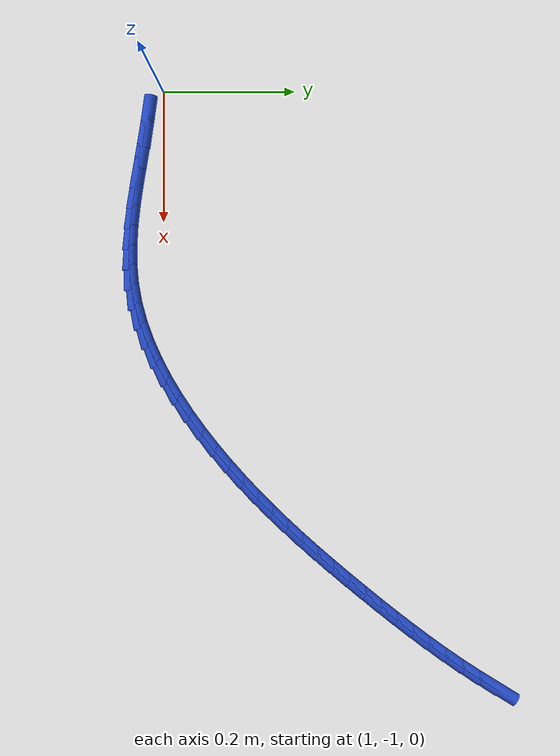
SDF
<sdf version="1.6">
 <world name="default">
  <model name="ground_plane">
   <static>1</static>
   <link name="link">
    <collision name="collision">
     <geometry><plane><normal>0 0 1</normal><size>100 100</size></plane></geometry>
     <surface><friction><ode><mu>100</mu><mu2>50</mu2></ode></friction></surface>
    </collision>
    <visual name="visual">
     <cast_shadows>0</cast_shadows>
     <geometry><plane><normal>0 0 1</normal><size>100 100</size></plane></geometry>
     <material>
      <script><uri>file://media/materials/scripts/gazebo.material</uri><name>Gazebo/WhiteGlow</name></script>
     </material>
    </visual>
   </link>
  </model>
  <model name="line">
   <link name="link_123">
    <pose>1.9088743113380238 -0.4959171571857584 0.01 0 1.57 1.0184952734578194</pose>
    <collision name="collision">
     <geometry><cylinder><radius>0.01</radius><length>0.08</length></cylinder></geometry>
    </collision>
    <visual name="visual">
     <material>
      <script><name>Gazebo/Blue</name><uri>file://media/materials/scripts/gazebo.material</uri></script>
     </material>
     <geometry><cylinder><radius>0.01</radius><length>0.08</length></cylinder></geometry>
    </visual>
   </link>
   <link name="link_124">
    <pose>1.8925202807554393 -0.5224540308787561 0.01 0 1.57 0.9924584813441164</pose>
    <collision name="collision">
     <geometry><cylinder><radius>0.01</radius><length>0.08</length></cylinder></geometry>
    </collision>
    <visual name="visual">
     <material>
      <script><name>Gazebo/Blue</name><uri>file://media/materials/scripts/gazebo.material</uri></script>
     </material>
     <geometry><cylinder><radius>0.01</radius><length>0.08</length></cylinder></geometry>
    </visual>
   </link>
   <link name="link_125">
    <pose>1.875476007257121 -0.548563702309075 0.01 0 1.57 0.9689911327801847</pose>
    <collision name="collision">
     <geometry><cylinder><radius>0.01</radius><length>0.08</length></cylinder></geometry>
    </collision>
    <visual name="visual">
     <material>
      <script><name>Gazebo/Blue</name><uri>file://media/materials/scripts/gazebo.material</uri></script>
     </material>
     <geometry><cylinder><radius>0.01</radius><length>0.08</length></cylinder></geometry>
    </visual>
   </link>
   <link name="link_126">
    <pose>1.8578173717573845 -0.5742755364816404 0.01 0 1.57 0.948076527673184</pose>
    <collision name="collision">
     <geometry><cylinder><radius>0.01</radius><length>0.08</length></cylinder></geometry>
    </collision>
    <visual name="visual">
     <material>
      <script><name>Gazebo/Blue</name><uri>file://media/materials/scripts/gazebo.material</uri></script>
     </material>
     <geometry><cylinder><radius>0.01</radius><length>0.08</length></cylinder></geometry>
    </visual>
   </link>
   <link name="link_127">
    <pose>1.839620255170547 -0.59961889840138 0.01 0 1.57 0.9296920477667652</pose>
    <collision name="collision">
     <geometry><cylinder><radius>0.01</radius><length>0.08</length></cylinder></geometry>
    </collision>
    <visual name="visual">
     <material>
      <script><name>Gazebo/Blue</name><uri>file://media/materials/scripts/gazebo.material</uri></script>
     </material>
     <geometry><cylinder><radius>0.01</radius><length>0.08</length></cylinder></geometry>
    </visual>
   </link>
   <link name="link_128">
    <pose>1.8209605384109209 -0.6246231530732199 0.01 0 1.57 0.9138132077534743</pose>
    <collision name="collision">
     <geometry><cylinder><radius>0.01</radius><length>0.08</length></cylinder></geometry>
    </collision>
    <visual name="visual">
     <material>
      <script><name>Gazebo/Blue</name><uri>file://media/materials/scripts/gazebo.material</uri></script>
     </material>
     <geometry><cylinder><radius>0.01</radius><length>0.08</length></cylinder></geometry>
    </visual>
   </link>
   <link name="link_129">
    <pose>1.8019141023928245 -0.6493176655020874 0.01 0 1.57 0.9004171109981163</pose>
    <collision name="collision">
     <geometry><cylinder><radius>0.01</radius><length>0.08</length></cylinder></geometry>
    </collision>
    <visual name="visual">
     <material>
      <script><name>Gazebo/Blue</name><uri>file://media/materials/scripts/gazebo.material</uri></script>
     </material>
     <geometry><cylinder><radius>0.01</radius><length>0.08</length></cylinder></geometry>
    </visual>
   </link>
   <link name="link_130">
    <pose>1.782556828030571 -0.6737318006929083 0.01 0 1.57 0.889485355154983</pose>
    <collision name="collision">
     <geometry><cylinder><radius>0.01</radius><length>0.08</length></cylinder></geometry>
    </collision>
    <visual name="visual">
     <material>
      <script><name>Gazebo/Blue</name><uri>file://media/materials/scripts/gazebo.material</uri></script>
     </material>
     <geometry><cylinder><radius>0.01</radius><length>0.08</length></cylinder></geometry>
    </visual>
   </link>
   <link name="link_131">
    <pose>1.762964596238478 -0.6978949236506099 0.01 0 1.57 0.8806797030926925</pose>
    <collision name="collision">
     <geometry><cylinder><radius>0.01</radius><length>0.08</length></cylinder></geometry>
    </collision>
    <visual name="visual">
     <material>
      <script><name>Gazebo/Blue</name><uri>file://media/materials/scripts/gazebo.material</uri></script>
     </material>
     <geometry><cylinder><radius>0.01</radius><length>0.08</length></cylinder></geometry>
    </visual>
   </link>
   <link name="link_132">
    <pose>1.7432035143446603 -0.7218323087024995 0.01 0 1.57 0.8708623518514527</pose>
    <collision name="collision">
     <geometry><cylinder><radius>0.01</radius><length>0.08</length></cylinder></geometry>
    </collision>
    <visual name="visual">
     <material>
      <script><name>Gazebo/Blue</name><uri>file://media/materials/scripts/gazebo.material</uri></script>
     </material>
     <geometry><cylinder><radius>0.01</radius><length>0.08</length></cylinder></geometry>
    </visual>
   </link>
   <link name="link_133">
    <pose>1.723245914682838 -0.7455299811977613 0.01 0 1.57 0.8582961021293536</pose>
    <collision name="collision">
     <geometry><cylinder><radius>0.01</radius><length>0.08</length></cylinder></geometry>
    </collision>
    <visual name="visual">
     <material>
      <script><name>Gazebo/Blue</name><uri>file://media/materials/scripts/gazebo.material</uri></script>
     </material>
     <geometry><cylinder><radius>0.01</radius><length>0.08</length></cylinder></geometry>
    </visual>
   </link>
   <link name="link_134">
    <pose>1.703011887450067 -0.7689521008433378 0.01 0 1.57 0.8429883826686356</pose>
    <collision name="collision">
     <geometry><cylinder><radius>0.01</radius><length>0.08</length></cylinder></geometry>
    </collision>
    <visual name="visual">
     <material>
      <script><name>Gazebo/Blue</name><uri>file://media/materials/scripts/gazebo.material</uri></script>
     </material>
     <geometry><cylinder><radius>0.01</radius><length>0.08</length></cylinder></geometry>
    </visual>
   </link>
   <link name="link_135">
    <pose>1.6824209578589124 -0.7920625908752009 0.01 0 1.57 0.8249854571355435</pose>
    <collision name="collision">
     <geometry><cylinder><radius>0.01</radius><length>0.08</length></cylinder></geometry>
    </collision>
    <visual name="visual">
     <material>
      <script><name>Gazebo/Blue</name><uri>file://media/materials/scripts/gazebo.material</uri></script>
     </material>
     <geometry><cylinder><radius>0.01</radius><length>0.08</length></cylinder></geometry>
    </visual>
   </link>
   <link name="link_136">
    <pose>1.6613926511219377 -0.8148253745293217 0.01 0 1.57 0.804356365872783</pose>
    <collision name="collision">
     <geometry><cylinder><radius>0.01</radius><length>0.08</length></cylinder></geometry>
    </collision>
    <visual name="visual">
     <material>
      <script><name>Gazebo/Blue</name><uri>file://media/materials/scripts/gazebo.material</uri></script>
     </material>
     <geometry><cylinder><radius>0.01</radius><length>0.08</length></cylinder></geometry>
    </visual>
   </link>
   <link name="link_137">
    <pose>1.6398464924517078 -0.8372043750416712 0.01 0 1.57 0.7811957040967942</pose>
    <collision name="collision">
     <geometry><cylinder><radius>0.01</radius><length>0.08</length></cylinder></geometry>
    </collision>
    <visual name="visual">
     <material>
      <script><name>Gazebo/Blue</name><uri>file://media/materials/scripts/gazebo.material</uri></script>
     </material>
     <geometry><cylinder><radius>0.01</radius><length>0.08</length></cylinder></geometry>
    </visual>
   </link>
   <link name="link_138">
    <pose>1.6177020070607862 -0.8591635156482219 0.01 0 1.57 0.7556260590987286</pose>
    <collision name="collision">
     <geometry><cylinder><radius>0.01</radius><length>0.08</length></cylinder></geometry>
    </collision>
    <visual name="visual">
     <material>
      <script><name>Gazebo/Blue</name><uri>file://media/materials/scripts/gazebo.material</uri></script>
     </material>
     <geometry><cylinder><radius>0.01</radius><length>0.08</length></cylinder></geometry>
    </visual>
   </link>
   <link name="link_139">
    <pose>1.5948787201617387 -0.8806667195849435 0.01 0 1.57 0.727799771784634</pose>
    <collision name="collision">
     <geometry><cylinder><radius>0.01</radius><length>0.08</length></cylinder></geometry>
    </collision>
    <visual name="visual">
     <material>
      <script><name>Gazebo/Blue</name><uri>file://media/materials/scripts/gazebo.material</uri></script>
     </material>
     <geometry><cylinder><radius>0.01</radius><length>0.08</length></cylinder></geometry>
    </visual>
   </link>
   <link name="link_140">
    <pose>1.5712961569671289 -0.901677910087808 0.01 0 1.57 0.6978840935130697</pose>
    <collision name="collision">
     <geometry><cylinder><radius>0.01</radius><length>0.08</length></cylinder></geometry>
    </collision>
    <visual name="visual">
     <material>
      <script><name>Gazebo/Blue</name><uri>file://media/materials/scripts/gazebo.material</uri></script>
     </material>
     <geometry><cylinder><radius>0.01</radius><length>0.08</length></cylinder></geometry>
    </visual>
   </link>
   <link name="link_141">
    <pose>1.5468748249406294 -0.9221595384739831 0.01 0 1.57 0.6651091586991548</pose>
    <collision name="collision">
     <geometry><cylinder><radius>0.01</radius><length>0.08</length></cylinder></geometry>
    </collision>
    <visual name="visual">
     <material>
      <script><name>Gazebo/Blue</name><uri>file://media/materials/scripts/gazebo.material</uri></script>
     </material>
     <geometry><cylinder><radius>0.01</radius><length>0.08</length></cylinder></geometry>
    </visual>
   </link>
   <link name="link_142">
    <pose>1.5215913254515891 -0.9419899984568193 0.01 0 1.57 0.6277878244447692</pose>
    <collision name="collision">
     <geometry><cylinder><radius>0.01</radius><length>0.08</length></cylinder></geometry>
    </collision>
    <visual name="visual">
     <material>
      <script><name>Gazebo/Blue</name><uri>file://media/materials/scripts/gazebo.material</uri></script>
     </material>
     <geometry><cylinder><radius>0.01</radius><length>0.08</length></cylinder></geometry>
    </visual>
   </link>
   <link name="link_143">
    <pose>1.4955076099523625 -0.9609197853019378 0.01 0 1.57 0.5852177204576156</pose>
    <collision name="collision">
     <geometry><cylinder><radius>0.01</radius><length>0.08</length></cylinder></geometry>
    </collision>
    <visual name="visual">
     <material>
      <script><name>Gazebo/Blue</name><uri>file://media/materials/scripts/gazebo.material</uri></script>
     </material>
     <geometry><cylinder><radius>0.01</radius><length>0.08</length></cylinder></geometry>
    </visual>
   </link>
   <link name="link_144">
    <pose>1.4686927884790753 -0.9786886670240875 0.01 0 1.57 0.5367090677745961</pose>
    <collision name="collision">
     <geometry><cylinder><radius>0.01</radius><length>0.08</length></cylinder></geometry>
    </collision>
    <visual name="visual">
     <material>
      <script><name>Gazebo/Blue</name><uri>file://media/materials/scripts/gazebo.material</uri></script>
     </material>
     <geometry><cylinder><radius>0.01</radius><length>0.08</length></cylinder></geometry>
    </visual>
   </link>
   <link name="link_145">
    <pose>1.4412159710678516 -0.9950364116380179 0.01 0 1.57 0.4814839176654953</pose>
    <collision name="collision">
     <geometry><cylinder><radius>0.01</radius><length>0.08</length></cylinder></geometry>
    </collision>
    <visual name="visual">
     <material>
      <script><name>Gazebo/Blue</name><uri>file://media/materials/scripts/gazebo.material</uri></script>
     </material>
     <geometry><cylinder><radius>0.01</radius><length>0.08</length></cylinder></geometry>
    </visual>
   </link>
   <link name="link_146">
    <pose>1.4131462677548192 -1.0097027871584776 0.01 0 1.57 0.4187078912543283</pose>
    <collision name="collision">
     <geometry><cylinder><radius>0.01</radius><length>0.08</length></cylinder></geometry>
    </collision>
    <visual name="visual">
     <material>
      <script><name>Gazebo/Blue</name><uri>file://media/materials/scripts/gazebo.material</uri></script>
     </material>
     <geometry><cylinder><radius>0.01</radius><length>0.08</length></cylinder></geometry>
    </visual>
   </link>
   <link name="link_147">
    <pose>1.3845527885761042 -1.0224275616002167 0.01 0 1.57 0.34755364004248646</pose>
    <collision name="collision">
     <geometry><cylinder><radius>0.01</radius><length>0.08</length></cylinder></geometry>
    </collision>
    <visual name="visual">
     <material>
      <script><name>Gazebo/Blue</name><uri>file://media/materials/scripts/gazebo.material</uri></script>
     </material>
     <geometry><cylinder><radius>0.01</radius><length>0.08</length></cylinder></geometry>
    </visual>
   </link>
   <link name="link_148">
    <pose>1.3555046435678304 -1.0329505029779833 0.01 0 1.57 0.2673112057418075</pose>
    <collision name="collision">
     <geometry><cylinder><radius>0.01</radius><length>0.08</length></cylinder></geometry>
    </collision>
    <visual name="visual">
     <material>
      <script><name>Gazebo/Blue</name><uri>file://media/materials/scripts/gazebo.material</uri></script>
     </material>
     <geometry><cylinder><radius>0.01</radius><length>0.08</length></cylinder></geometry>
    </visual>
   </link>
   <link name="link_149">
    <pose>1.3260709427661244 -1.0410113793065272 0.01 0 1.57 0.1775784063807717</pose>
    <collision name="collision">
     <geometry><cylinder><radius>0.01</radius><length>0.08</length></cylinder></geometry>
    </collision>
    <visual name="visual">
     <material>
      <script><name>Gazebo/Blue</name><uri>file://media/materials/scripts/gazebo.material</uri></script>
     </material>
     <geometry><cylinder><radius>0.01</radius><length>0.08</length></cylinder></geometry>
    </visual>
   </link>
   <link name="link_150">
    <pose>1.2963207346074823 -1.0463506148468202 0.01 0 1.57 0.08460291360088885</pose>
    <collision name="collision">
     <geometry><cylinder><radius>0.01</radius><length>0.08</length></cylinder></geometry>
    </collision>
    <visual name="visual">
     <material>
      <script><name>Gazebo/Blue</name><uri>file://media/materials/scripts/gazebo.material</uri></script>
     </material>
     <geometry><cylinder><radius>0.01</radius><length>0.08</length></cylinder></geometry>
    </visual>
   </link>
   <link name="link_151">
    <pose>1.2663054735795352 -1.0488960694424565 0.01 0 1.57 0.00410922260211705</pose>
    <collision name="collision">
     <geometry><cylinder><radius>0.01</radius><length>0.08</length></cylinder></geometry>
    </collision>
    <visual name="visual">
     <material>
      <script><name>Gazebo/Blue</name><uri>file://media/materials/scripts/gazebo.material</uri></script>
     </material>
     <geometry><cylinder><radius>0.01</radius><length>0.08</length></cylinder></geometry>
    </visual>
   </link>
   <link name="link_152">
    <pose>1.236034857039418 -1.0490204588442584 0.01 0 1.57 -0.06084434603612666</pose>
    <collision name="collision">
     <geometry><cylinder><radius>0.01</radius><length>0.08</length></cylinder></geometry>
    </collision>
    <visual name="visual">
     <material>
      <script><name>Gazebo/Blue</name><uri>file://media/materials/scripts/gazebo.material</uri></script>
     </material>
     <geometry><cylinder><radius>0.01</radius><length>0.08</length></cylinder></geometry>
    </visual>
   </link>
   <link name="link_153">
    <pose>1.2055125229251633 -1.047161052290049 0.01 0 1.57 -0.11023981932203729</pose>
    <collision name="collision">
     <geometry><cylinder><radius>0.01</radius><length>0.08</length></cylinder></geometry>
    </collision>
    <visual name="visual">
     <material>
      <script><name>Gazebo/Blue</name><uri>file://media/materials/scripts/gazebo.material</uri></script>
     </material>
     <geometry><cylinder><radius>0.01</radius><length>0.08</length></cylinder></geometry>
    </visual>
   </link>
   <link name="link_154">
    <pose>1.1747421091748047 -1.0437551190176522 0.01 0 1.57 -0.14456595004671932</pose>
    <collision name="collision">
     <geometry><cylinder><radius>0.01</radius><length>0.08</length></cylinder></geometry>
    </collision>
    <visual name="visual">
     <material>
      <script><name>Gazebo/Blue</name><uri>file://media/materials/scripts/gazebo.material</uri></script>
     </material>
     <geometry><cylinder><radius>0.01</radius><length>0.08</length></cylinder></geometry>
    </visual>
   </link>
   <link name="link_155">
    <pose>1.1437272537263765 -1.0392399282648912 0.01 0 1.57 -0.16446071334542464</pose>
    <collision name="collision">
     <geometry><cylinder><radius>0.01</radius><length>0.08</length></cylinder></geometry>
    </collision>
    <visual name="visual">
     <material>
      <script><name>Gazebo/Blue</name><uri>file://media/materials/scripts/gazebo.material</uri></script>
     </material>
     <geometry><cylinder><radius>0.01</radius><length>0.08</length></cylinder></geometry>
    </visual>
   </link>
   <link name="link_156">
    <pose>1.1124715945179116 -1.0340527492695895 0.01 0 1.57 -0.17049161002661117</pose>
    <collision name="collision">
     <geometry><cylinder><radius>0.01</radius><length>0.08</length></cylinder></geometry>
    </collision>
    <visual name="visual">
     <material>
      <script><name>Gazebo/Blue</name><uri>file://media/materials/scripts/gazebo.material</uri></script>
     </material>
     <geometry><cylinder><radius>0.01</radius><length>0.08</length></cylinder></geometry>
    </visual>
   </link>
   <link name="link_157">
    <pose>1.0809787694874433 -1.0286308512695699 0.01 0 1.57 -0.16305096277943765</pose>
    <collision name="collision">
     <geometry><cylinder><radius>0.01</radius><length>0.08</length></cylinder></geometry>
    </collision>
    <visual name="visual">
     <material>
      <script><name>Gazebo/Blue</name><uri>file://media/materials/scripts/gazebo.material</uri></script>
     </material>
     <geometry><cylinder><radius>0.01</radius><length>0.08</length></cylinder></geometry>
    </visual>
   </link>
   <link name="link_158">
    <pose>1.0492524165730066 -1.0234115035026563 0.01 0 1.57 -0.14233712024730855</pose>
    <collision name="collision">
     <geometry><cylinder><radius>0.01</radius><length>0.08</length></cylinder></geometry>
    </collision>
    <visual name="visual">
     <material>
      <script><name>Gazebo/Blue</name><uri>file://media/materials/scripts/gazebo.material</uri></script>
     </material>
     <geometry><cylinder><radius>0.01</radius><length>0.08</length></cylinder></geometry>
    </visual>
   </link>
  </model>
 </world>
</sdf>
